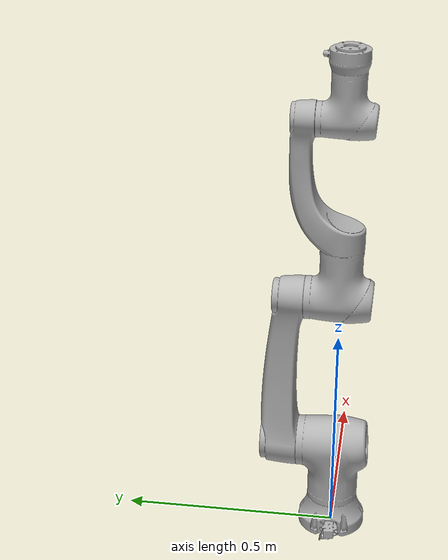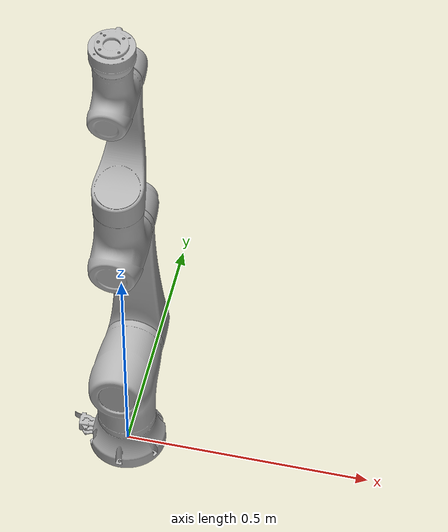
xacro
<?xml version="1.0" ?>
<robot name="CL105_CAD" xmlns:xacro="http://www.ros.org/wiki/xacro">

<xacro:include filename="$(find CL105_CAD_description)/urdf/materials.xacro" />
<xacro:include filename="$(find CL105_CAD_description)/urdf/CL105_CAD.trans" />
<xacro:include filename="$(find CL105_CAD_description)/urdf/CL105_CAD.gazebo" />
<link name="base_link">
  <inertial>
    <origin xyz="0.001991278484652979 -7.532122156145854e-06 0.027298097067766095" rpy="0 0 0"/>
    <mass value="4.288130806669328"/>
    <inertia ixx="0.009463" iyy="0.009007" izz="0.015917" ixy="0.0" iyz="1e-06" ixz="9.8e-05"/>
  </inertial>
  <visual>
    <origin xyz="0 0 0" rpy="0 0 0"/>
    <geometry>
      <mesh filename="package://CL105_CAD_description/meshes/base_link.stl" scale="0.001 0.001 0.001"/>
    </geometry>
    <material name="silver"/>
  </visual>
  <collision>
    <origin xyz="0 0 0" rpy="0 0 0"/>
    <geometry>
      <mesh filename="package://CL105_CAD_description/meshes/base_link.stl" scale="0.001 0.001 0.001"/>
    </geometry>
  </collision>
</link>

<link name="link1_1">
  <inertial>
    <origin xyz="-3.69146489643918e-05 0.02380160091788548 0.09033819594078742" rpy="0 0 0"/>
    <mass value="13.483560792165"/>
    <inertia ixx="0.096515" iyy="0.078036" izz="0.048202" ixy="-7e-06" iyz="-0.018307" ixz="2.1e-05"/>
  </inertial>
  <visual>
    <origin xyz="0.0 0.0 -0.073" rpy="0 0 0"/>
    <geometry>
      <mesh filename="package://CL105_CAD_description/meshes/link1_1.stl" scale="0.001 0.001 0.001"/>
    </geometry>
    <material name="silver"/>
  </visual>
  <collision>
    <origin xyz="0.0 0.0 -0.073" rpy="0 0 0"/>
    <geometry>
      <mesh filename="package://CL105_CAD_description/meshes/link1_1.stl" scale="0.001 0.001 0.001"/>
    </geometry>
  </collision>
</link>

<link name="link2_1">
  <inertial>
    <origin xyz="2.971501909611211e-06 0.02369176344788508 0.15985123648010266" rpy="0 0 0"/>
    <mass value="8.691874920929015"/>
    <inertia ixx="0.201087" iyy="0.203114" izz="0.013068" ixy="-1e-06" iyz="0.009474" ixz="1.1e-05"/>
  </inertial>
  <visual>
    <origin xyz="0.0 -0.1075 -0.22" rpy="0 0 0"/>
    <geometry>
      <mesh filename="package://CL105_CAD_description/meshes/link2_1.stl" scale="0.001 0.001 0.001"/>
    </geometry>
    <material name="silver"/>
  </visual>
  <collision>
    <origin xyz="0.0 -0.1075 -0.22" rpy="0 0 0"/>
    <geometry>
      <mesh filename="package://CL105_CAD_description/meshes/link2_1.stl" scale="0.001 0.001 0.001"/>
    </geometry>
  </collision>
</link>

<link name="link3_1">
  <inertial>
    <origin xyz="-1.70733933537202e-05 -0.07461731057204753 0.04644751615774245" rpy="0 0 0"/>
    <mass value="8.39640730631808"/>
    <inertia ixx="0.044741" iyy="0.03409" izz="0.022844" ixy="5e-06" iyz="0.008382" ixz="0.0"/>
  </inertial>
  <visual>
    <origin xyz="0.0 -0.096 -0.6" rpy="0 0 0"/>
    <geometry>
      <mesh filename="package://CL105_CAD_description/meshes/link3_1.stl" scale="0.001 0.001 0.001"/>
    </geometry>
    <material name="silver"/>
  </visual>
  <collision>
    <origin xyz="0.0 -0.096 -0.6" rpy="0 0 0"/>
    <geometry>
      <mesh filename="package://CL105_CAD_description/meshes/link3_1.stl" scale="0.001 0.001 0.001"/>
    </geometry>
  </collision>
</link>

<link name="link4_1">
  <inertial>
    <origin xyz="3.681774915769865e-05 0.057102814501425854 0.10764256267295125" rpy="0 0 0"/>
    <mass value="4.517948763788745"/>
    <inertia ixx="0.061026" iyy="0.053709" izz="0.013178" ixy="-7e-06" iyz="-0.016831" ixz="-2.1e-05"/>
  </inertial>
  <visual>
    <origin xyz="0.0 0.0 -0.753" rpy="0 0 0"/>
    <geometry>
      <mesh filename="package://CL105_CAD_description/meshes/link4_1.stl" scale="0.001 0.001 0.001"/>
    </geometry>
    <material name="silver"/>
  </visual>
  <collision>
    <origin xyz="0.0 0.0 -0.753" rpy="0 0 0"/>
    <geometry>
      <mesh filename="package://CL105_CAD_description/meshes/link4_1.stl" scale="0.001 0.001 0.001"/>
    </geometry>
  </collision>
</link>

<link name="link5_1">
  <inertial>
    <origin xyz="-2.815003003326467e-06 -0.05017298575534267 0.03943244736759688" rpy="0 0 0"/>
    <mass value="4.448024633926817"/>
    <inertia ixx="0.01679" iyy="0.012547" izz="0.008198" ixy="0.0" iyz="0.002937" ixz="1e-06"/>
  </inertial>
  <visual>
    <origin xyz="0.0 -0.067 -1.02" rpy="0 0 0"/>
    <geometry>
      <mesh filename="package://CL105_CAD_description/meshes/link5_1.stl" scale="0.001 0.001 0.001"/>
    </geometry>
    <material name="silver"/>
  </visual>
  <collision>
    <origin xyz="0.0 -0.067 -1.02" rpy="0 0 0"/>
    <geometry>
      <mesh filename="package://CL105_CAD_description/meshes/link5_1.stl" scale="0.001 0.001 0.001"/>
    </geometry>
  </collision>
</link>

<link name="link6_1">
  <inertial>
    <origin xyz="1.603620745392782e-05 0.00048683752741907185 0.005206387282118419" rpy="0 0 0"/>
    <mass value="1.5851289160233653"/>
    <inertia ixx="0.001034" iyy="0.000999" izz="0.001635" ixy="0.0" iyz="-1e-06" ixz="-1e-06"/>
  </inertial>
  <visual>
    <origin xyz="0.0 -0.0 -1.1535" rpy="0 0 0"/>
    <geometry>
      <mesh filename="package://CL105_CAD_description/meshes/link6_1.stl" scale="0.001 0.001 0.001"/>
    </geometry>
    <material name="silver"/>
  </visual>
  <collision>
    <origin xyz="0.0 -0.0 -1.1535" rpy="0 0 0"/>
    <geometry>
      <mesh filename="package://CL105_CAD_description/meshes/link6_1.stl" scale="0.001 0.001 0.001"/>
    </geometry>
  </collision>
</link>

<joint name="j1" type="continuous">
  <origin xyz="0.0 0.0 0.073" rpy="0 0 0"/>
  <parent link="base_link"/>
  <child link="link1_1"/>
  <axis xyz="-0.0 -0.0 1.0"/>
</joint>

<joint name="j2" type="continuous">
  <origin xyz="0.0 0.1075 0.147" rpy="0 0 0"/>
  <parent link="link1_1"/>
  <child link="link2_1"/>
  <axis xyz="-0.0 -1.0 -0.0"/>
</joint>

<joint name="j3" type="continuous">
  <origin xyz="0.0 -0.0115 0.38" rpy="0 0 0"/>
  <parent link="link2_1"/>
  <child link="link3_1"/>
  <axis xyz="-0.0 -1.0 -0.0"/>
</joint>

<joint name="j4" type="continuous">
  <origin xyz="0.0 -0.096 0.153" rpy="0 0 0"/>
  <parent link="link3_1"/>
  <child link="link4_1"/>
  <axis xyz="-0.0 -0.0 1.0"/>
</joint>

<joint name="j5" type="continuous">
  <origin xyz="0.0 0.067 0.267" rpy="0 0 0"/>
  <parent link="link4_1"/>
  <child link="link5_1"/>
  <axis xyz="-0.0 -1.0 -0.0"/>
</joint>

<joint name="j6" type="continuous">
  <origin xyz="0.0 -0.067 0.1335" rpy="0 0 0"/>
  <parent link="link5_1"/>
  <child link="link6_1"/>
  <axis xyz="-0.0 -0.0 1.0"/>
</joint>

</robot>

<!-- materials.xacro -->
<robot name="CL105_CAD" xmlns:xacro="http://www.ros.org/wiki/xacro" >

<material name="silver">
  <color rgba="0.700 0.700 0.700 1.000"/>
</material>

</robot>

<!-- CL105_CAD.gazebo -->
<robot name="CL105_CAD" xmlns:xacro="http://www.ros.org/wiki/xacro" >

<xacro:property name="body_color" value="Gazebo/Silver" />

<gazebo>
  <plugin name="control" filename="libgazebo_ros_control.so"/>
</gazebo>
<gazebo reference="base_link">
  <material>${body_color}</material>
  <mu1>0.2</mu1>
  <mu2>0.2</mu2>
  <selfCollide>true</selfCollide>
  <gravity>true</gravity>
</gazebo>

<gazebo reference="link1_1">
  <material>${body_color}</material>
  <mu1>0.2</mu1>
  <mu2>0.2</mu2>
  <selfCollide>true</selfCollide>
</gazebo>

<gazebo reference="link2_1">
  <material>${body_color}</material>
  <mu1>0.2</mu1>
  <mu2>0.2</mu2>
  <selfCollide>true</selfCollide>
</gazebo>

<gazebo reference="link3_1">
  <material>${body_color}</material>
  <mu1>0.2</mu1>
  <mu2>0.2</mu2>
  <selfCollide>true</selfCollide>
</gazebo>

<gazebo reference="link4_1">
  <material>${body_color}</material>
  <mu1>0.2</mu1>
  <mu2>0.2</mu2>
  <selfCollide>true</selfCollide>
</gazebo>

<gazebo reference="link5_1">
  <material>${body_color}</material>
  <mu1>0.2</mu1>
  <mu2>0.2</mu2>
  <selfCollide>true</selfCollide>
</gazebo>

<gazebo reference="link6_1">
  <material>${body_color}</material>
  <mu1>0.2</mu1>
  <mu2>0.2</mu2>
  <selfCollide>true</selfCollide>
</gazebo>

</robot>
